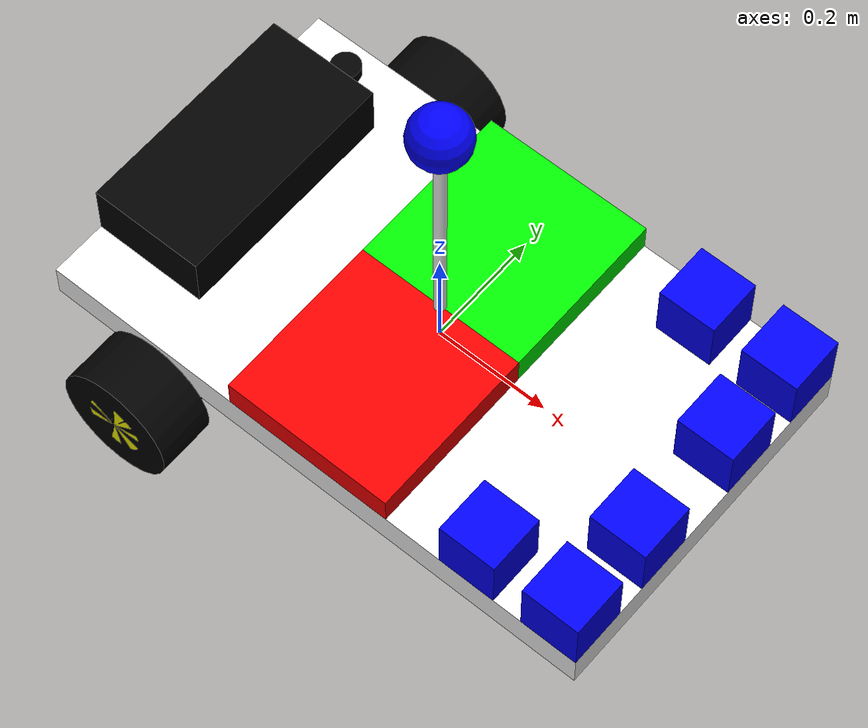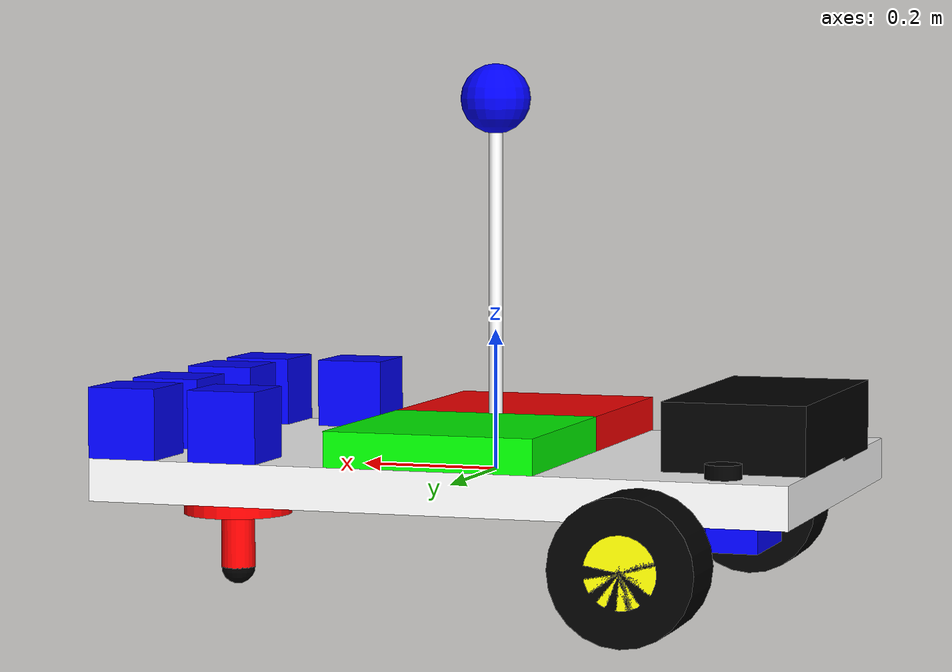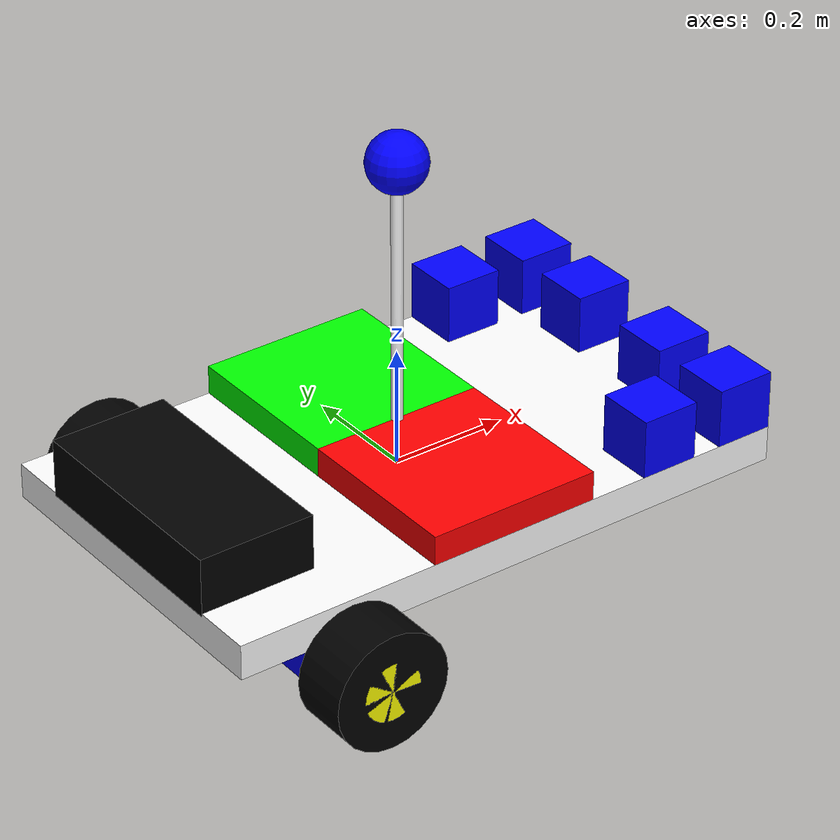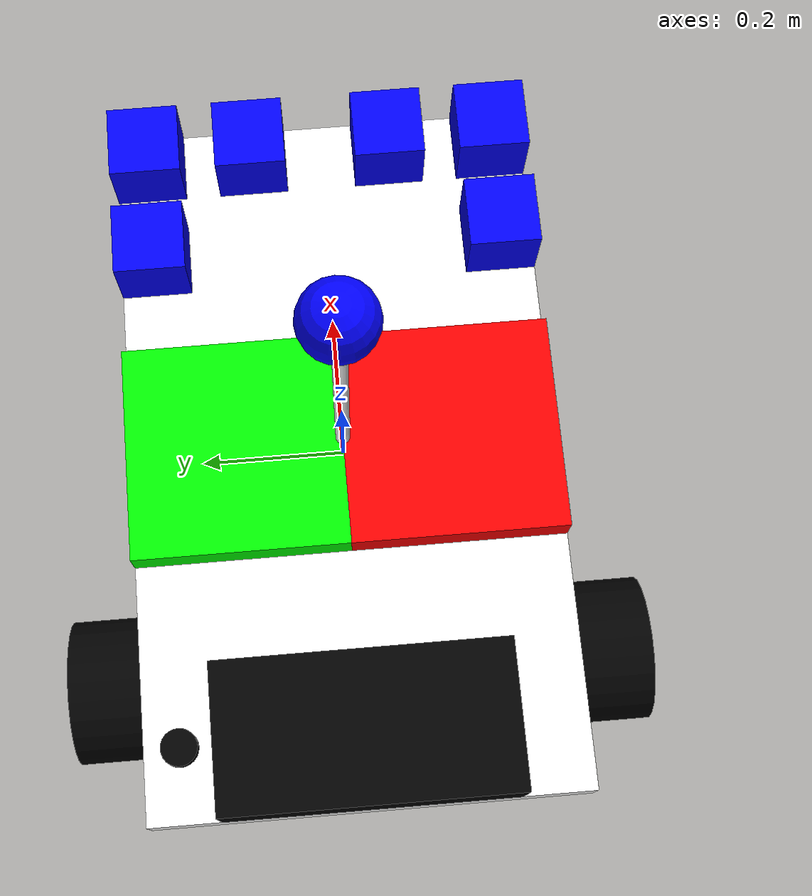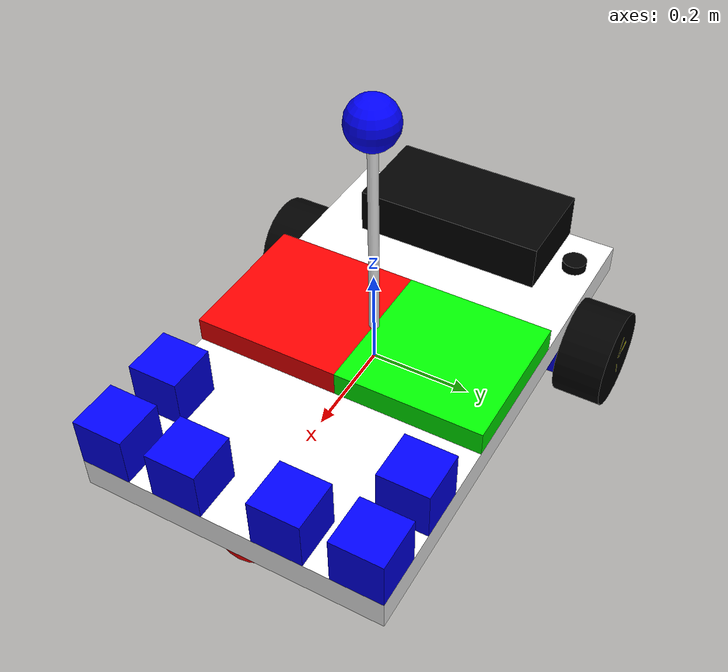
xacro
<?xml version="1.0"?>

<robot name="tuktuk" xmlns:xacro="http://www.ros.org/wiki/xacro">

    <xacro:include filename="properties.xacro"/>
    <xacro:include filename="materials.xacro"/>
    <xacro:include filename="macros.xacro"/>
    <xacro:include filename="gazebo.xacro"/>

    <link name="chassis">
        <xacro:box_inertial mass="${chassis_mass}"
                            x="${chassis_l}"
                            y="${chassis_w}"
                            z="${chassis_h}"/>
        <visual>
            <geometry>
                <box size="${chassis_l} ${chassis_w} ${chassis_h}"/>
            </geometry>
            <material name="white"/>
        </visual>
        <collision>
            <geometry>
                <box size="${chassis_l} ${chassis_w} ${chassis_h}"/>
            </geometry>
        </collision>
    </link>

    <link name="stand">
        <xacro:zero_inertial/>
        <visual>
            <geometry>
                <cylinder radius="0.01" length='0.5'/>
            </geometry>
            <material name="white" />
        </visual>
        <collision>
            <geometry>
                <cylinder radius="0.01" length='0.5'/>
            </geometry>
        </collision>
    </link>
    <joint name="stand_joint" type="fixed">
        <parent link="chassis"/>
        <child link="stand"/>
        <origin rpy="0 0 0" xyz="0 0 0.28"/>
    </joint>

    <link name="thief_camera">
        <xacro:zero_inertial/>
        <visual>
            <geometry>
                <sphere radius="0.05" />
            </geometry>
            <material name="blue" />
        </visual>
        <collision>
            <geometry>
                <sphere radius="0.06" />
            </geometry>
        </collision>
    </link>
    <joint name="cam_joint" type="fixed">
        <parent link="stand"/>
        <child link="thief_camera"/>
        <origin rpy="0 0 0" xyz="0 0 0.25"/>
    </joint>

    <xacro:main_assembly/>

</robot>

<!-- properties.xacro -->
<robot xmlns:xacro="http://www.ros.org/wiki/xacro">

    <!-- Misc -->
    <xacro:property name="PI" value="3.14159265359"/>
    <xacro:property name="elimit" value="100.0"/>
    <xacro:property name="vlimit" value="3.14"/>

    <!-- Chassis -->
    <xacro:property name="chassis_l" value="1.0"/>
    <xacro:property name="chassis_w" value="0.6"/>
    <xacro:property name="chassis_h" value="0.06"/>

    <xacro:property name="chassis_mass" value="0.8"/>

    <!-- Wheels -->
    <xacro:property name="wheel_r" value="0.1"/>
    <xacro:property name="wheel_w" value="0.1"/>

    <xacro:property name="wheel_mass" value="0.08"/>

    <xacro:property name="iwheel_r" value="${wheel_r/2}"/>

    <xacro:property name="iwheel_mass" value="0.03"/>

    <!-- Motors -->
    <xacro:property name="motor_l" value="0.1"/>
    <xacro:property name="motor_w" value="0.15"/>
    <xacro:property name="motor_h" value="0.1"/>

    <xacro:property name="motor_x" value="-0.3"/>
    <xacro:property name="motor_z" value="-0.08"/>

    <xacro:property name="motor_mass" value="0.12"/>

    <!-- Electronics -->
    <xacro:property name="battery_l" value="0.2"/>
    <xacro:property name="battery_w" value="0.4"/>
    <xacro:property name="battery_h" value="0.1"/>

    <xacro:property name="battery_x" value="-0.4"/>
    <xacro:property name="battery_y" value="0"/>
    <xacro:property name="battery_z" value="0.075"/>

    <xacro:property name="battery_mass" value="0.35"/>

    <xacro:property name="switch_r" value="0.025"/>
    <xacro:property name="switch_w" value="0.02"/>

    <xacro:property name="switch_x" value="-0.4"/>
    <xacro:property name="switch_y" value="0.25"/>
    <xacro:property name="switch_z" value="0.04"/>

    <xacro:property name="switch_mass" value="0.005"/>

    <xacro:property name="controller_side" value="0.3"/>
    <xacro:property name="controller_h" value="0.05"/>

    <xacro:property name="controller_mass" value="0.04"/>
    <xacro:property name="ir_mass" value="0.01"/>
    <xacro:property name="ir_size" value="0.1"/>

    <!-- Caster -->
    <xacro:property name="caster_base_r" value="0.08"/>
    <xacro:property name="caster_base_w" value="0.05"/>

    <xacro:property name="caster_stud_r" value="0.025"/>
    <xacro:property name="caster_stud_h" value="0.08"/>

    <xacro:property name="caster_ball_r" value="0.025"/>

    <xacro:property name="caster_base_mass" value="0.03"/>
    <xacro:property name="caster_stud_mass" value="0.01"/>
    <xacro:property name="caster_ball_mass" value="0.02"/>

</robot>

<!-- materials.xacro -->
<robot xmlns:xacro="http://www.ros.org/wiki/xacro">
    <material name="blue">
                <color rgba="0 0 1 1"/>
    </material>
    <material name="white">
                <color rgba="1 1 1 1"/>
    </material>
    <material name="black">
                <color rgba="0 0 0 1"/>
    </material>
    <material name="black_2">
                <color rgba="0 0 0 0.95"/>
    </material>
    <material name="green">
                <color rgba="0 1 0 1"/>
    </material>
    <material name="red">
                <color rgba="1 0 0 1"/>
    </material>
    <material name="yellow">
                <color rgba="1 1 0 1"/>
    </material>
</robot>

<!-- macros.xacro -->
<robot xmlns:xacro="http://www.ros.org/wiki/xacro">

    <!-- Def Inertial -->
    <xacro:macro name="box_inertial" params="mass x y z">
        <inertial>
            <mass value="${mass}"/>
            <origin xyz="0 0 0" rpy="0 0 0"/>
            <inertia
                ixx="${mass*(y*y + z*z)/12}"
                ixy="0"
                ixz="0"
                iyy="${mass*(x*x + z*z)/12}"
                iyz="0"
                izz="${mass*(x*x + y*y)/12}"/>
        </inertial>
    </xacro:macro>

    <xacro:macro name="cylinder_inertial"
             params="mass radius length">
        <inertial>
            <mass value="${mass}"/>
            <origin xyz="0 0 0" rpy="0 0 0"/>
            <inertia
                ixx="${mass*(3*radius*radius + length*length)/12}"
                ixy="0"
                ixz="0"
                iyy="${mass*(3*radius*radius + length*length)/12}"
                iyz="0"
                izz="${mass*radius*radius/2}"/>
        </inertial>
    </xacro:macro>

    <xacro:macro name="sphere_inertial"
             params="mass radius">
        <inertial>
            <mass value="${mass}"/>
            <origin xyz="0 0 0" rpy="0 0 0"/>
            <inertia
                ixx="${2*mass*radius*radius/5}"
                ixy="0"
                ixz="0"
                iyy="${2*mass*radius*radius/5}"
                iyz="0"
                izz="${2*mass*radius*radius/5}"/>
        </inertial>
    </xacro:macro>

    <xacro:macro name="zero_inertial">
        <inertial>
            <mass value="0.001"/>

            <origin xyz="0 0 0" rpy="0 0 0"/>

            <inertia
                ixx="0.001"
                ixy="0"
                ixz="0"
                iyy="0.001"
                iyz="0"
                izz="0.001"/>
        </inertial>
    </xacro:macro>

    <!-- IR Module -->
    <xacro:macro name="ir_module" params="name x y z">
        <link name="${name}">
            <xacro:box_inertial mass="${ir_mass}"
                                x="${ir_size}"
                                y="${ir_size}"
                                z="${ir_size}"/>
            <visual>
                <geometry>
                    <box size="${ir_size} ${ir_size} ${ir_size}"/>
                </geometry>
                <material name="blue"/>
            </visual>
            <collision>
                <geometry>
                    <box size="${ir_size} ${ir_size} ${ir_size}"/>
                </geometry>
            </collision>
        </link>

        <joint name="${name}_joint" type="fixed">
            <parent link="chassis"/>
            <child link="${name}"/>
            <origin xyz="${x} ${y} ${z}" rpy="0 0 0"/>
        </joint>
    </xacro:macro>

    <!-- Drive Side -->
    <xacro:macro name="drive_side" params="side motor_y wheel_y">

        <link name="motor${side}">
            <xacro:box_inertial mass="${motor_mass}"
                                x="${motor_l}"
                                y="${motor_w}"
                                z="${motor_h}"/>
            <visual>
                <geometry>
                    <box size="${motor_l} ${motor_w} ${motor_h}"/>
                </geometry>
                <material name="blue"/>
            </visual>
            <collision>
                <geometry>
                    <box size="${motor_l} ${motor_w} ${motor_h}"/>
                </geometry>
            </collision>
        </link>

        <joint name="motor${side}_joint" type="fixed">
            <parent link="chassis"/>
            <child link="motor${side}"/>
            <origin xyz="${motor_x} ${motor_y} ${motor_z}" rpy="0 0 0"/>
        </joint>

        <link name="iwheel${side}">
            <xacro:cylinder_inertial mass="${iwheel_mass}"
                                     radius="${iwheel_r}"
                                     length="${wheel_w}"/>
            <visual>
                <geometry>
                    <cylinder radius="${iwheel_r}" length="${wheel_w}"/>
                </geometry>
                <material name="yellow"/>
            </visual>
            <collision>
                <geometry>
                    <cylinder radius="${iwheel_r}" length="${wheel_w}"/>
                </geometry>
            </collision>
        </link>
        <joint name="iwheel${side}_joint" type="continuous">
            <parent link="motor${side}"/>
            <child link="iwheel${side}"/>
            <origin xyz="0 ${wheel_y} 0" rpy="${PI/2} 0 0"/>
            <axis xyz="0 0 -1"/>
        </joint>

        <link name="wheel${side}">
            <xacro:cylinder_inertial mass="${wheel_mass}"
                                     radius="${wheel_r}"
                                     length="${wheel_w}"/>
            <visual>
                <geometry>
                    <cylinder radius="${wheel_r}" length="${wheel_w}"/>
                </geometry>
                <material name="black_2"/>
            </visual>
            <collision>
                 <geometry>
                    <cylinder radius="${wheel_r}" length="${wheel_w}"/>
                </geometry>
            </collision>
        </link>

        <joint name="wheel${side}_joint" type="fixed">
            <parent link="iwheel${side}"/>
            <child link="wheel${side}"/>
            <origin xyz="0 0 0" rpy="0 0 0"/>
        </joint>

    </xacro:macro>

    <!-- Caster -->
    <xacro:macro name="caster_assembly">

        <link name="caster_base">
            <xacro:cylinder_inertial mass="${caster_base_mass}"
                                     radius="${caster_base_r}"
                                     length="${caster_base_w}"/>
            <visual>
                <geometry>
                    <cylinder radius="${caster_base_r}" length="${caster_base_w}" />
                </geometry>
                <material name="red"/>
            </visual>
            <collision>
                <geometry>
                    <cylinder radius="${caster_base_r}" length="${caster_base_w}" />
                </geometry>
            </collision>
        </link>

        <joint name="caster_joint" type="fixed">
            <parent link="chassis"/>
            <child link="caster_base"/>
            <origin xyz="0.4 0 -0.055" rpy="0 0 0"/>
        </joint>

        <link name="caster_stud">
            <xacro:cylinder_inertial mass="${caster_stud_mass}"
                                     radius="${caster_stud_r}"
                                     length="${caster_stud_h}"/>
            <visual>
                <geometry>
                    <cylinder radius="${caster_stud_r}" length="${caster_stud_h}"/>
                </geometry>
                <material name="red"/>
            </visual>
            <collision>
                <geometry>
                    <cylinder radius="${caster_stud_r}" length="${caster_stud_h}"/>
                </geometry>
            </collision>
        </link>

        <joint name="stud_joint" type="fixed">
            <parent link="caster_base"/>
            <child link="caster_stud"/>
            <origin xyz="0 0 -0.065" rpy="0 0 0"/>
        </joint>

        <link name="dummy_link1">
            <xacro:zero_inertial />
            <collision >
                <geometry>
                    <sphere radius="0" />
                </geometry>
            </collision>
        </link>
        <link name="dummy_link2">
            <xacro:zero_inertial />
            <collision >
                <geometry>
                    <sphere radius="0" />
                </geometry>
            </collision>
        </link>

        <link name="caster_ball">
            <xacro:sphere_inertial mass="${caster_ball_mass}"
                                     radius="${caster_ball_r}"/>
            <visual>
                <geometry>
                    <sphere radius="${caster_ball_r}"/>
                </geometry>
                <material name="black"/>
            </visual>
            <collision>
                <geometry>
                    <sphere radius="${caster_ball_r}"/>
                </geometry>
            </collision>
        </link>

        <joint name="ball_n_socketx" type="continuous">
            <parent link="caster_stud" />
            <child link="dummy_link1" />
            <origin rpy="0 0 0" xyz="0 0 -0.04"/>
            <axis xyz="1 0 0"/>
        </joint>

        <joint name="ball_n_sockety" type="continuous">
            <parent link="dummy_link1" />
            <child link="dummy_link2" />
            <origin rpy="0 0 0" xyz="0 0 0"/>
            <axis xyz="0 1 0"/>
        </joint>

        <joint name="ball_n_socketz" type="continuous">
            <parent link="dummy_link2" />
            <child link="caster_ball" />
            <origin rpy="0 0 0" xyz="0 0 0"/>
            <axis xyz="0 0 1"/>
        </joint>

    </xacro:macro>

    <!-- Controller -->
    <xacro:macro name="controller_assembly" params="name mat y_offset z_offset">
        <link name="${name}">
            <xacro:box_inertial mass="${controller_mass}"
                                x="${controller_side}"
                                y="${controller_side}"
                                z="${controller_h}"/>
            <visual>
                <geometry>
                    <box size="${controller_side} ${controller_side} ${controller_h}"/>
                </geometry>
                <material name="${mat}" />
            </visual>
            <collision>
                <geometry>
                    <box size="${controller_side} ${controller_side} ${controller_h}"/>
                </geometry>
            </collision>
        </link>
        <joint name="${name}_joint" type="fixed">
            <parent link="chassis" />
            <child link="${name}" />
            <origin rpy="0 0 0" xyz="0 ${y_offset} ${z_offset}"/>
        </joint>
    </xacro:macro>

    <!-- Battery and Switch -->
    <xacro:macro name="battery">
        <link name="battery">
            <xacro:box_inertial mass="${battery_mass}"
                                x="${battery_l}"
                                y="${battery_w}"
                                z="${battery_h}"/>
            <visual>
                <geometry>
                    <box size="${battery_l} ${battery_w} ${battery_h}"/>
                </geometry>
                <material name="black" />
            </visual>
            <collision>
                <geometry>
                    <box size="${battery_l} ${battery_w} ${battery_h}"/>
                </geometry>
            </collision>
        </link>
        <joint name="battery_joint" type="fixed">
            <parent link="chassis" />
            <child link="battery" />
            <origin rpy="0 0 0" xyz="${battery_x} ${battery_y} ${battery_z}"/>
        </joint>
    </xacro:macro>

    <xacro:macro name="switch">
        <link name="switch">
            <xacro:cylinder_inertial mass="${switch_mass}"
                                     radius="${switch_r}"
                                     length="${switch_w}"/>
            <visual>
                <geometry>
                    <cylinder radius="${switch_r}" length="${switch_w}" />
                </geometry>
                <material name="black" />
            </visual>
            <collision>
                <geometry>
                    <cylinder radius="${switch_r}" length="${switch_w}" />
                </geometry>
            </collision>
        </link>
        <joint name="switch_joint" type="fixed">
            <parent link="chassis" />
            <child link="switch" />
            <origin rpy="0 0 0" xyz="${switch_x} ${switch_y} ${switch_z}"/>
        </joint>
    </xacro:macro>

    <!-- Wheel Assembly -->
    <xacro:macro name="wheel_assembly">

        <xacro:caster_assembly/>

        <xacro:drive_side side="l" motor_y="0.225" wheel_y="0.125"/>

        <xacro:drive_side side="r" motor_y="-0.225" wheel_y="-0.125"/>

    </xacro:macro>

    <!-- Main Assembly -->
    <xacro:macro name="main_assembly">

        <xacro:ir_module name="ir1" x="0.45" y="0.25" z="0.08"/>
        <xacro:ir_module name="ir2" x="0.45" y="0.10" z="0.08"/>
        <xacro:ir_module name="ir3" x="0.45" y="-0.10" z="0.08"/>
        <xacro:ir_module name="ir4" x="0.45" y="-0.25" z="0.08"/>

        <xacro:ir_module name="irl" x="0.30" y="0.25" z="0.08"/>
        <xacro:ir_module name="irr" x="0.30" y="-0.25" z="0.08"/>

        <xacro:controller_assembly name="arduino" mat="green" y_offset="0.15" z_offset="0.055"/>
        <xacro:controller_assembly name="driver" mat="red" y_offset="-0.15" z_offset="0.055"/>

        <xacro:battery/>
        <xacro:switch/>

        <xacro:wheel_assembly/>

    </xacro:macro>

</robot>
